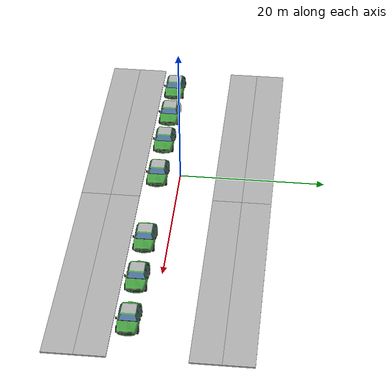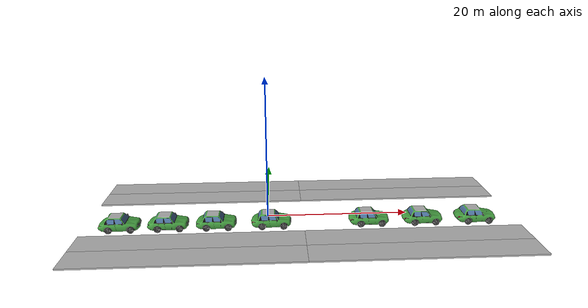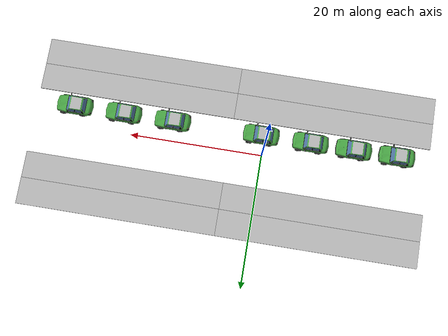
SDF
<sdf version="1.4">
 <world name="default">
  <scene><grid>true</grid></scene>
  <include><uri>model://sun</uri></include>
  <include><uri>model://acera</uri><pose>5 9 0 0 0 0</pose></include>
  <include><uri>model://acera</uri><pose>5 -9 0 0 0 0</pose></include>
  <include><uri>model://carNoMotor</uri><pose>-20 -3 0 0 0 1.57</pose></include>
  <include><uri>model://carNoMotor</uri><pose>-13.5 -3 0 0 0 1.57</pose></include>
  <include><uri>model://carNoMotor</uri><pose>-7 -3 0 0 0 1.57</pose></include>
  <include><uri>model://carNoMotor</uri><pose>0.5 -3 0 0 0 1.57</pose></include>
  <include><uri>model://carNoMotor</uri><pose>14 -3 0 0 0 1.57</pose></include>
  <include><uri>model://carNoMotor</uri><pose>21.5 -3 0 0 0 1.57</pose></include>
  <include><uri>model://carNoMotor</uri><pose>29 -3 0 0 0 1.57</pose></include>
 </world>
</sdf>

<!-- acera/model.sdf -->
<sdf version="1.5">
  <model name="acera">
    <static>true</static>
    <link name="link">
      <collision name="collision">
        <geometry>
          <box>
            <size>60 8 0.2</size>
          </box>
        </geometry>
      </collision>
      <visual name="visual_1">
        <pose>-15 2 0 0 0 0</pose>
        <cast_shadows>false</cast_shadows>
        <geometry>
          <box>
            <size>30 4 0.2</size>
        </box>
      </geometry>
        <material>
          <script>
            <uri>model://acera/materials/scripts</uri>
            <uri>model://acera/materials/textures</uri>
            <name>vrc/acera</name>
        </script>
      </material>
    </visual>
    <visual name="visual_2">
        <pose>15 2 0 0 0 0</pose>
        <cast_shadows>false</cast_shadows>
        <geometry>
          <box>
            <size>30 4 0.2</size>
        </box>
      </geometry>
        <material>
          <script>
            <uri>model://acera/materials/scripts</uri>
            <uri>model://acera/materials/textures</uri>
            <name>vrc/acera</name>
        </script>
      </material>
    </visual>
    <visual name="visual_3">
        <pose>15 -2 0 0 0 0</pose>
        <cast_shadows>false</cast_shadows>
        <geometry>
          <box>
            <size>30 4 0.2</size>
        </box>
      </geometry>
        <material>
          <script>
            <uri>model://acera/materials/scripts</uri>
            <uri>model://acera/materials/textures</uri>
            <name>vrc/acera</name>
        </script>
      </material>
    </visual>
      <visual name="visual_4">
        <pose>-15 -2 0 0 0 0</pose>
        <cast_shadows>false</cast_shadows>
        <geometry>
          <box>
            <size>30 4 0.2</size>
        </box>
      </geometry>
        <material>
          <script>
            <uri>model://acera/materials/scripts</uri>
            <uri>model://acera/materials/textures</uri>
            <name>vrc/acera</name>
        </script>
      </material>
    </visual>
  </link>
</model>
</sdf>

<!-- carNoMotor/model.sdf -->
<sdf version="1.4">
<model name="carApriltag">
  <pose>0 0 0 0 0 0</pose>
  <static>false</static>
    <link name="car">
        <gravity>1</gravity>
        <inertial>
            <mass>500</mass>
        </inertial>
    	<pose>0 0 0.749745 0 0 0</pose>
      <collision name="collision">
            <geometry>
              <mesh>
            		<uri>model://carNoMotor/meshes/model.dae</uri>
          		</mesh>
          </geometry>
     </collision>
      <visual name="visual">
        <geometry>
          <mesh>
            <uri>model://carNoMotor/meshes/model.dae</uri>
        </mesh>
      </geometry>
    </visual>
  </link>
    <link name="front_right_wheel">
        <pose>1.1 -1.70000 0.448000 0 1.5707 0</pose>
         <inertial>
        <mass>12</mass>
        <inertia>
          <ixx>0.5</ixx>
          <ixy>0.0</ixy>
          <iyy>0.5</iyy>
          <ixz>0.0</ixz>
          <iyz>0.0</iyz>
          <izz>1.0</izz>
      </inertia>
    </inertial>

        <collision name="collision">
          <geometry>
            <cylinder>
              <radius>.45</radius>
              <length>.3</length>
          </cylinder>
        </geometry>
      </collision>
    </link>
      <link name="front_left_wheel">
        <pose>-1.100000 -1.70000 0.448000 0 1.5707 0</pose>
        <inertial>
        <mass>12</mass>
        <inertia>
          <ixx>0.5</ixx>
          <ixy>0.0</ixy>
          <iyy>0.5</iyy>
          <ixz>0.0</ixz>
          <iyz>0.0</iyz>
          <izz>1.0</izz>
      </inertia>
    </inertial>
        <collision name="collision">
          <geometry>
            <cylinder>
              <radius>.45</radius>
              <length>.3</length>
          </cylinder>
        </geometry>
      </collision>
    </link>

      <link name="front_left_steering_wheel_block">
        <pose>-1.100000 -1.70000 0.448000 0 1.5707 0</pose>
        <inertial>
        <mass>1</mass>
        <inertia>
          <ixx>1.0</ixx>
          <ixy>0.0</ixy>
          <iyy>1.0</iyy>
          <ixz>0.0</ixz>
          <iyz>0.0</iyz>
          <izz>1.0</izz>
      </inertia>
    </inertial>

        <collision name="collision">
          <geometry>
            <cylinder>
              <radius>0.05</radius>
              <length>0.1</length>
          </cylinder>
        </geometry>
      </collision>
		</link>

        <link name="front_right_steering_wheel_block">
        <pose>1.100000 -1.70000 0.448000 0 1.5707 0</pose>
        <inertial>
        <mass>1</mass>
        <inertia>
          <ixx>1.0</ixx>
          <ixy>0.0</ixy>
          <iyy>1.0</iyy>
          <ixz>0.0</ixz>
          <iyz>0.0</iyz>
          <izz>1.0</izz>
      </inertia>
    </inertial>

        <collision name="collision">
          <geometry>
            <cylinder>
              <radius>0.05</radius>
              <length>0.1</length>
          </cylinder>
        </geometry>
      </collision>
    </link>

      <link name="rear_left_wheel">
        <pose>1.1 1.242288 0.448000 0 1.5707 0</pose>
         <inertial>
        <mass>12</mass>
        <inertia>
          <ixx>0.5</ixx>
          <ixy>0.0</ixy>
          <iyy>0.5</iyy>
          <ixz>0.0</ixz>
          <iyz>0.0</iyz>
          <izz>1.0</izz>
      </inertia>
      </inertial>
        <collision name="collision">

          <geometry>
            <cylinder>
              <radius>.45</radius>
              <length>.3</length>
          </cylinder>
        </geometry>

          <max_contacts>1</max_contacts>
        <surface>
          <friction>
            <ode>
              <mu>1.0</mu>
              <mu2>1.0</mu2>
              <fdir1>0 0 1</fdir1>
              <slip1>0.0</slip1>
              <slip2>0.0</slip2>
          </ode>
        </friction>
          <contact>
            <ode>
              <min_depth>0.005</min_depth>
              <kp>1e8</kp>
          </ode>
        </contact>
      </surface>
      </collision>
    </link>

      <link name="rear_right_wheel">
        <pose>-1.1 1.242288 0.448000 0 1.5707 0</pose>
         <inertial>
        <mass>12</mass>
        <inertia>
          <ixx>0.5</ixx>
          <ixy>0.0</ixy>
          <iyy>0.5</iyy>
          <ixz>0.0</ixz>
          <iyz>0.0</iyz>
          <izz>1.0</izz>
      </inertia>
      </inertial>
        <collision name="collision">

          <geometry>
            <cylinder>
              <radius>.45</radius>
              <length>.3</length>
          </cylinder>
        </geometry>

          <max_contacts>1</max_contacts>
        <surface>
          <friction>
            <ode>
              <mu>1.0</mu>
              <mu2>1.0</mu2>
              <fdir1>0 0 1</fdir1>
              <slip1>0.0</slip1>
              <slip2>0.0</slip2>
          </ode>
        </friction>
          <contact>
            <ode>
              <min_depth>0.005</min_depth>
              <kp>1e8</kp>
          </ode>
        </contact>
      </surface>
      </collision>
    </link>

       <joint type="revolute" name="front_left_wheel_hinge">
        <pose>0 0 0 0 0 0</pose>
        <child>front_left_wheel</child>
        <parent>front_left_steering_wheel_block</parent>
        <axis>
          <xyz>1 0 0</xyz>
      </axis>
    </joint>
      <joint type="revolute" name="front_right_wheel_hinge">
        <pose>0 0 0 0 0 0</pose>
        <child>front_right_wheel</child>
        <parent>front_right_steering_wheel_block</parent>
        <axis>
          <xyz>1 0 0</xyz>
      </axis>
    </joint>

      <joint type="revolute" name="front_left_steering_wheel">
        <pose>0 0 0 0 0 0</pose>
        <child>front_left_steering_wheel_block</child>
        <parent>car</parent>
        <axis>
        	 <xyz>0 0 1</xyz>
  	 			<dynamics>
          		<damping>500.0</damping>
        		</dynamics>
        	 <limit>
        	 		<lower>-0.52359</lower>
              <upper>0.52359</upper>
        </limit>
      </axis>
        <physics>
        <ode>
          <cfm_damping>1</cfm_damping>
          <limit>
            <cfm>0.000000</cfm>
            <erp>0.900000</erp>
        </limit>
      </ode>
    </physics>
    </joint>
      <joint type="revolute" name="front_right_steering_wheel">
        <pose>0 0 0 0 0 0</pose>
        <child>front_right_steering_wheel_block</child>
        <parent>car</parent>
        <axis>
        <xyz>0 0 1</xyz>
        		<dynamics>
          		<damping>500.0</damping>
        		</dynamics>
     		 <limit>
              <lower>-0.52359</lower>
              <upper>0.52359</upper>
        </limit>
      </axis>
        <physics>
        <ode>
          <cfm_damping>1</cfm_damping>
          <limit>
            <cfm>0.000000</cfm>
            <erp>0.900000</erp>
        </limit>
      </ode>
    </physics>
    </joint>

      <joint type="revolute" name="rear_right_wheel_hinge">
        <pose>0 0 0 0 0 0</pose>
        <child>rear_right_wheel</child>
        <parent>car</parent>
        <axis>
          <xyz>1 0 0</xyz>
      </axis>
    </joint>

      <joint type="revolute" name="rear_left_wheel_hinge">
        <pose>0 0 0 0 0 0</pose>
        <child>rear_left_wheel</child>
        <parent>car</parent>
        <axis>
          <xyz>1 0 0</xyz>
      </axis>
    </joint>
</model>
</sdf>
